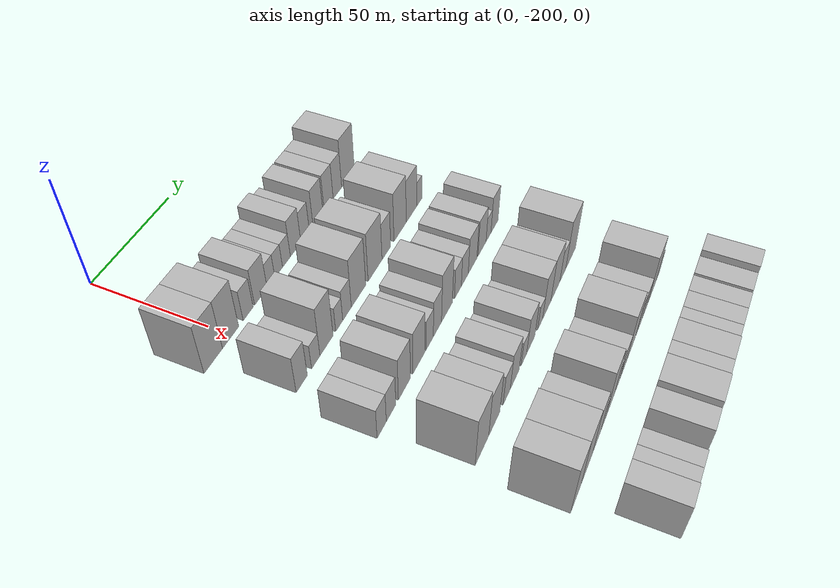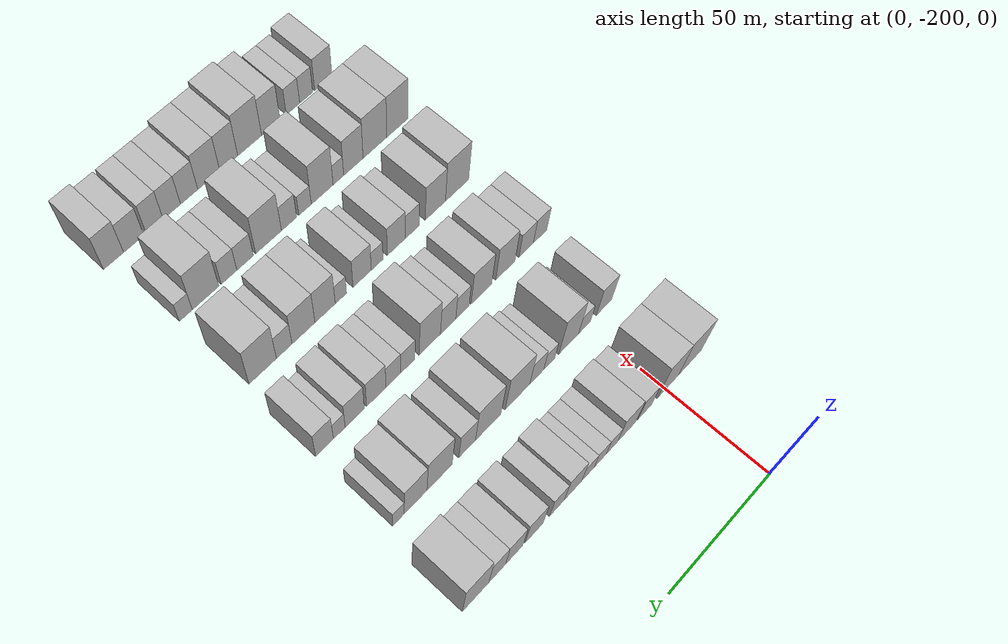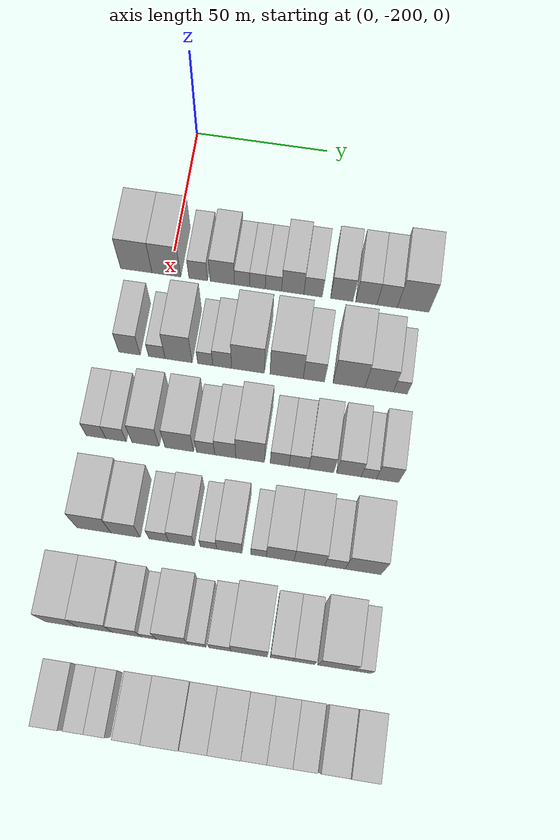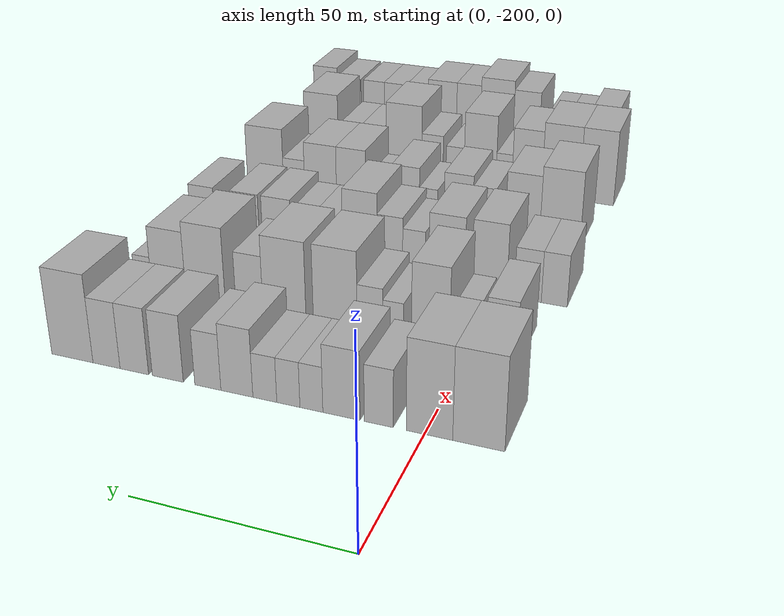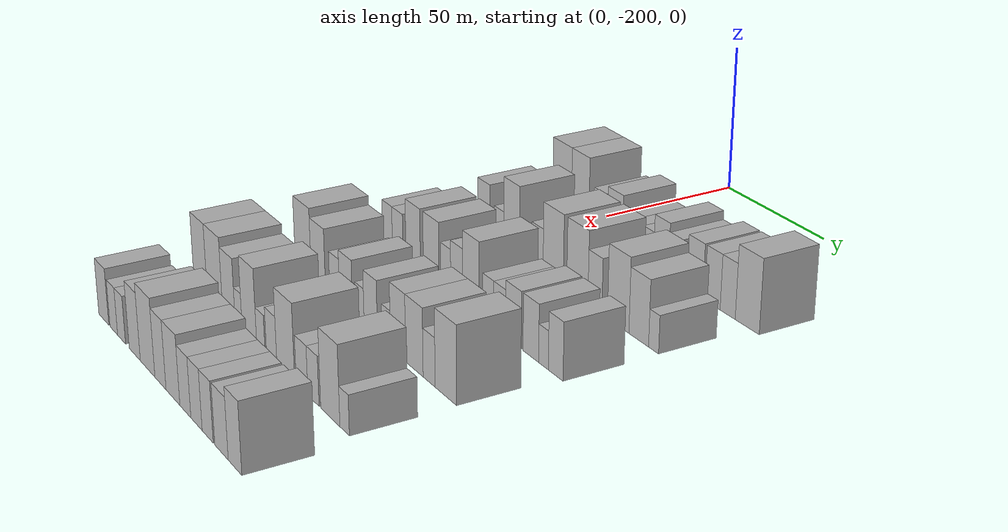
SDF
<sdf version="1.6">
 <world name="default">
  <model name="building_36">
   <static>1</static>
   <pose>50.0000 -212.1717 0 0.000000 0.000000 0.000000</pose>
   <link name="link">
    <pose>0 0 12.00 0 0 0</pose>
    <collision name="collision"><geometry><box><size>20.0000 11.6591 24.0000</size></box></geometry></collision>
    <visual name="visual">
     <cast_shadows>0</cast_shadows>
     <geometry><box><size>20.0000 11.6591 24.0000</size></box></geometry>
     <material>
      <script>
       <uri>model://HANNAS_wall/materials/scripts</uri>
       <uri>model://HANNAS_wall/materials/textures</uri>
       <name>vrc/HANNAS_wall</name>
      </script>
     </material>
    </visual>
   </link>
  </model>
  <model name="building_37">
   <static>1</static>
   <pose>50.0000 -201.0310 0 0.000000 0.000000 0.000000</pose>
   <link name="link">
    <pose>0 0 12.00 0 0 0</pose>
    <collision name="collision"><geometry><box><size>20.0000 10.6222 24.0000</size></box></geometry></collision>
    <visual name="visual">
     <cast_shadows>0</cast_shadows>
     <geometry><box><size>20.0000 10.6222 24.0000</size></box></geometry>
     <material>
      <script>
       <uri>model://HANNAS_wall/materials/scripts</uri>
       <uri>model://HANNAS_wall/materials/textures</uri>
       <name>vrc/HANNAS_wall</name>
      </script>
     </material>
    </visual>
   </link>
  </model>
  <model name="building_38">
   <static>1</static>
   <pose>50.0000 -189.3100 0 0.000000 0.000000 0.000000</pose>
   <link name="link">
    <pose>0 0 7.50 0 0 0</pose>
    <collision name="collision"><geometry><box><size>20.0000 6.8199 15.0000</size></box></geometry></collision>
    <visual name="visual">
     <cast_shadows>0</cast_shadows>
     <geometry><box><size>20.0000 6.8199 15.0000</size></box></geometry>
     <material>
      <script>
       <uri>model://HANNAS_wall/materials/scripts</uri>
       <uri>model://HANNAS_wall/materials/textures</uri>
       <name>vrc/HANNAS_wall</name>
      </script>
     </material>
    </visual>
   </link>
  </model>
  <model name="building_39">
   <static>1</static>
   <pose>50.0000 -180.4429 0 0.000000 0.000000 0.000000</pose>
   <link name="link">
    <pose>0 0 9.00 0 0 0</pose>
    <collision name="collision"><geometry><box><size>20.0000 8.9143 18.0000</size></box></geometry></collision>
    <visual name="visual">
     <cast_shadows>0</cast_shadows>
     <geometry><box><size>20.0000 8.9143 18.0000</size></box></geometry>
     <material>
      <script>
       <uri>model://HANNAS_wall/materials/scripts</uri>
       <uri>model://HANNAS_wall/materials/textures</uri>
       <name>vrc/HANNAS_wall</name>
      </script>
     </material>
    </visual>
   </link>
  </model>
  <model name="building_40">
   <static>1</static>
   <pose>50.0000 -173.1909 0 0.000000 0.000000 0.000000</pose>
   <link name="link">
    <pose>0 0 6.00 0 0 0</pose>
    <collision name="collision"><geometry><box><size>20.0000 5.5898 12.0000</size></box></geometry></collision>
    <visual name="visual">
     <cast_shadows>0</cast_shadows>
     <geometry><box><size>20.0000 5.5898 12.0000</size></box></geometry>
     <material>
      <script>
       <uri>model://HANNAS_wall/materials/scripts</uri>
       <uri>model://HANNAS_wall/materials/textures</uri>
       <name>vrc/HANNAS_wall</name>
      </script>
     </material>
    </visual>
   </link>
  </model>
  <model name="building_41">
   <static>1</static>
   <pose>50.0000 -167.5408 0 0.000000 0.000000 0.000000</pose>
   <link name="link">
    <pose>0 0 6.00 0 0 0</pose>
    <collision name="collision"><geometry><box><size>20.0000 5.7103 12.0000</size></box></geometry></collision>
    <visual name="visual">
     <cast_shadows>0</cast_shadows>
     <geometry><box><size>20.0000 5.7103 12.0000</size></box></geometry>
     <material>
      <script>
       <uri>model://HANNAS_wall/materials/scripts</uri>
       <uri>model://HANNAS_wall/materials/textures</uri>
       <name>vrc/HANNAS_wall</name>
      </script>
     </material>
    </visual>
   </link>
  </model>
  <model name="building_42">
   <static>1</static>
   <pose>50.0000 -161.7023 0 0.000000 0.000000 0.000000</pose>
   <link name="link">
    <pose>0 0 6.00 0 0 0</pose>
    <collision name="collision"><geometry><box><size>20.0000 5.9668 12.0000</size></box></geometry></collision>
    <visual name="visual">
     <cast_shadows>0</cast_shadows>
     <geometry><box><size>20.0000 5.9668 12.0000</size></box></geometry>
     <material>
      <script>
       <uri>model://HANNAS_wall/materials/scripts</uri>
       <uri>model://HANNAS_wall/materials/textures</uri>
       <name>vrc/HANNAS_wall</name>
      </script>
     </material>
    </visual>
   </link>
  </model>
  <model name="building_43">
   <static>1</static>
   <pose>50.0000 -154.6629 0 0.000000 0.000000 0.000000</pose>
   <link name="link">
    <pose>0 0 9.00 0 0 0</pose>
    <collision name="collision"><geometry><box><size>20.0000 8.1120 18.0000</size></box></geometry></collision>
    <visual name="visual">
     <cast_shadows>0</cast_shadows>
     <geometry><box><size>20.0000 8.1120 18.0000</size></box></geometry>
     <material>
      <script>
       <uri>model://HANNAS_wall/materials/scripts</uri>
       <uri>model://HANNAS_wall/materials/textures</uri>
       <name>vrc/HANNAS_wall</name>
      </script>
     </material>
    </visual>
   </link>
  </model>
  <model name="building_44">
   <static>1</static>
   <pose>50.0000 -147.2349 0 0.000000 0.000000 0.000000</pose>
   <link name="link">
    <pose>0 0 7.50 0 0 0</pose>
    <collision name="collision"><geometry><box><size>20.0000 6.7439 15.0000</size></box></geometry></collision>
    <visual name="visual">
     <cast_shadows>0</cast_shadows>
     <geometry><box><size>20.0000 6.7439 15.0000</size></box></geometry>
     <material>
      <script>
       <uri>model://HANNAS_wall/materials/scripts</uri>
       <uri>model://HANNAS_wall/materials/textures</uri>
       <name>vrc/HANNAS_wall</name>
      </script>
     </material>
    </visual>
   </link>
  </model>
  <model name="building_45">
   <static>1</static>
   <pose>50.0000 -136.7835 0 0.000000 0.000000 0.000000</pose>
   <link name="link">
    <pose>0 0 9.00 0 0 0</pose>
    <collision name="collision"><geometry><box><size>20.0000 8.1589 18.0000</size></box></geometry></collision>
    <visual name="visual">
     <cast_shadows>0</cast_shadows>
     <geometry><box><size>20.0000 8.1589 18.0000</size></box></geometry>
     <material>
      <script>
       <uri>model://HANNAS_wall/materials/scripts</uri>
       <uri>model://HANNAS_wall/materials/textures</uri>
       <name>vrc/HANNAS_wall</name>
      </script>
     </material>
    </visual>
   </link>
  </model>
  <model name="building_46">
   <static>1</static>
   <pose>50.0000 -127.8636 0 0.000000 0.000000 0.000000</pose>
   <link name="link">
    <pose>0 0 9.00 0 0 0</pose>
    <collision name="collision"><geometry><box><size>20.0000 7.6809 18.0000</size></box></geometry></collision>
    <visual name="visual">
     <cast_shadows>0</cast_shadows>
     <geometry><box><size>20.0000 7.6809 18.0000</size></box></geometry>
     <material>
      <script>
       <uri>model://HANNAS_wall/materials/scripts</uri>
       <uri>model://HANNAS_wall/materials/textures</uri>
       <name>vrc/HANNAS_wall</name>
      </script>
     </material>
    </visual>
   </link>
  </model>
  <model name="building_47">
   <static>1</static>
   <pose>50.0000 -120.3242 0 0.000000 0.000000 0.000000</pose>
   <link name="link">
    <pose>0 0 9.00 0 0 0</pose>
    <collision name="collision"><geometry><box><size>20.0000 7.3981 18.0000</size></box></geometry></collision>
    <visual name="visual">
     <cast_shadows>0</cast_shadows>
     <geometry><box><size>20.0000 7.3981 18.0000</size></box></geometry>
     <material>
      <script>
       <uri>model://HANNAS_wall/materials/scripts</uri>
       <uri>model://HANNAS_wall/materials/textures</uri>
       <name>vrc/HANNAS_wall</name>
      </script>
     </material>
    </visual>
   </link>
  </model>
  <model name="building_48">
   <static>1</static>
   <pose>50.0000 -110.8982 0 0.000000 0.000000 0.000000</pose>
   <link name="link">
    <pose>0 0 12.00 0 0 0</pose>
    <collision name="collision"><geometry><box><size>20.0000 11.4539 24.0000</size></box></geometry></collision>
    <visual name="visual">
     <cast_shadows>0</cast_shadows>
     <geometry><box><size>20.0000 11.4539 24.0000</size></box></geometry>
     <material>
      <script>
       <uri>model://HANNAS_wall/materials/scripts</uri>
       <uri>model://HANNAS_wall/materials/textures</uri>
       <name>vrc/HANNAS_wall</name>
      </script>
     </material>
    </visual>
   </link>
  </model>
  <model name="building_152">
   <static>1</static>
   <pose>82.0000 -208.5455 0 0.000000 0.000000 0.000000</pose>
   <link name="link">
    <pose>0 0 9.00 0 0 0</pose>
    <collision name="collision"><geometry><box><size>20.0000 7.7458 18.0000</size></box></geometry></collision>
    <visual name="visual">
     <cast_shadows>0</cast_shadows>
     <geometry><box><size>20.0000 7.7458 18.0000</size></box></geometry>
     <material>
      <script>
       <uri>model://HANNAS_wall/materials/scripts</uri>
       <uri>model://HANNAS_wall/materials/textures</uri>
       <name>vrc/HANNAS_wall</name>
      </script>
     </material>
    </visual>
   </link>
  </model>
  <model name="building_153">
   <static>1</static>
   <pose>82.0000 -198.6771 0 0.000000 0.000000 0.000000</pose>
   <link name="link">
    <pose>0 0 6.00 0 0 0</pose>
    <collision name="collision"><geometry><box><size>20.0000 5.9908 12.0000</size></box></geometry></collision>
    <visual name="visual">
     <cast_shadows>0</cast_shadows>
     <geometry><box><size>20.0000 5.9908 12.0000</size></box></geometry>
     <material>
      <script>
       <uri>model://HANNAS_wall/materials/scripts</uri>
       <uri>model://HANNAS_wall/materials/textures</uri>
       <name>vrc/HANNAS_wall</name>
      </script>
     </material>
    </visual>
   </link>
  </model>
  <model name="building_154">
   <static>1</static>
   <pose>82.0000 -190.8410 0 0.000000 0.000000 0.000000</pose>
   <link name="link">
    <pose>0 0 12.00 0 0 0</pose>
    <collision name="collision"><geometry><box><size>20.0000 9.6814 24.0000</size></box></geometry></collision>
    <visual name="visual">
     <cast_shadows>0</cast_shadows>
     <geometry><box><size>20.0000 9.6814 24.0000</size></box></geometry>
     <material>
      <script>
       <uri>model://HANNAS_wall/materials/scripts</uri>
       <uri>model://HANNAS_wall/materials/textures</uri>
       <name>vrc/HANNAS_wall</name>
      </script>
     </material>
    </visual>
   </link>
  </model>
  <model name="building_155">
   <static>1</static>
   <pose>82.0000 -181.3008 0 0.000000 0.000000 0.000000</pose>
   <link name="link">
    <pose>0 0 6.00 0 0 0</pose>
    <collision name="collision"><geometry><box><size>20.0000 5.3991 12.0000</size></box></geometry></collision>
    <visual name="visual">
     <cast_shadows>0</cast_shadows>
     <geometry><box><size>20.0000 5.3991 12.0000</size></box></geometry>
     <material>
      <script>
       <uri>model://HANNAS_wall/materials/scripts</uri>
       <uri>model://HANNAS_wall/materials/textures</uri>
       <name>vrc/HANNAS_wall</name>
      </script>
     </material>
    </visual>
   </link>
  </model>
  <model name="building_156">
   <static>1</static>
   <pose>82.0000 -175.2442 0 0.000000 0.000000 0.000000</pose>
   <link name="link">
    <pose>0 0 7.50 0 0 0</pose>
    <collision name="collision"><geometry><box><size>20.0000 6.7140 15.0000</size></box></geometry></collision>
    <visual name="visual">
     <cast_shadows>0</cast_shadows>
     <geometry><box><size>20.0000 6.7140 15.0000</size></box></geometry>
     <material>
      <script>
       <uri>model://HANNAS_wall/materials/scripts</uri>
       <uri>model://HANNAS_wall/materials/textures</uri>
       <name>vrc/HANNAS_wall</name>
      </script>
     </material>
    </visual>
   </link>
  </model>
  <model name="building_157">
   <static>1</static>
   <pose>82.0000 -166.0482 0 0.000000 0.000000 0.000000</pose>
   <link name="link">
    <pose>0 0 12.00 0 0 0</pose>
    <collision name="collision"><geometry><box><size>20.0000 11.6779 24.0000</size></box></geometry></collision>
    <visual name="visual">
     <cast_shadows>0</cast_shadows>
     <geometry><box><size>20.0000 11.6779 24.0000</size></box></geometry>
     <material>
      <script>
       <uri>model://HANNAS_wall/materials/scripts</uri>
       <uri>model://HANNAS_wall/materials/textures</uri>
       <name>vrc/HANNAS_wall</name>
      </script>
     </material>
    </visual>
   </link>
  </model>
  <model name="building_158">
   <static>1</static>
   <pose>82.0000 -152.3044 0 0.000000 0.000000 0.000000</pose>
   <link name="link">
    <pose>0 0 12.00 0 0 0</pose>
    <collision name="collision"><geometry><box><size>20.0000 11.8096 24.0000</size></box></geometry></collision>
    <visual name="visual">
     <cast_shadows>0</cast_shadows>
     <geometry><box><size>20.0000 11.8096 24.0000</size></box></geometry>
     <material>
      <script>
       <uri>model://HANNAS_wall/materials/scripts</uri>
       <uri>model://HANNAS_wall/materials/textures</uri>
       <name>vrc/HANNAS_wall</name>
      </script>
     </material>
    </visual>
   </link>
  </model>
  <model name="building_159">
   <static>1</static>
   <pose>82.0000 -142.6119 0 0.000000 0.000000 0.000000</pose>
   <link name="link">
    <pose>0 0 9.00 0 0 0</pose>
    <collision name="collision"><geometry><box><size>20.0000 7.5755 18.0000</size></box></geometry></collision>
    <visual name="visual">
     <cast_shadows>0</cast_shadows>
     <geometry><box><size>20.0000 7.5755 18.0000</size></box></geometry>
     <material>
      <script>
       <uri>model://HANNAS_wall/materials/scripts</uri>
       <uri>model://HANNAS_wall/materials/textures</uri>
       <name>vrc/HANNAS_wall</name>
      </script>
     </material>
    </visual>
   </link>
  </model>
  <model name="building_160">
   <static>1</static>
   <pose>82.0000 -130.1950 0 0.000000 0.000000 0.000000</pose>
   <link name="link">
    <pose>0 0 12.00 0 0 0</pose>
    <collision name="collision"><geometry><box><size>20.0000 11.2582 24.0000</size></box></geometry></collision>
    <visual name="visual">
     <cast_shadows>0</cast_shadows>
     <geometry><box><size>20.0000 11.2582 24.0000</size></box></geometry>
     <material>
      <script>
       <uri>model://HANNAS_wall/materials/scripts</uri>
       <uri>model://HANNAS_wall/materials/textures</uri>
       <name>vrc/HANNAS_wall</name>
      </script>
     </material>
    </visual>
   </link>
  </model>
  <model name="building_161">
   <static>1</static>
   <pose>82.0000 -119.5649 0 0.000000 0.000000 0.000000</pose>
   <link name="link">
    <pose>0 0 10.50 0 0 0</pose>
    <collision name="collision"><geometry><box><size>20.0000 10.0021 21.0000</size></box></geometry></collision>
    <visual name="visual">
     <cast_shadows>0</cast_shadows>
     <geometry><box><size>20.0000 10.0021 21.0000</size></box></geometry>
     <material>
      <script>
       <uri>model://HANNAS_wall/materials/scripts</uri>
       <uri>model://HANNAS_wall/materials/textures</uri>
       <name>vrc/HANNAS_wall</name>
      </script>
     </material>
    </visual>
   </link>
  </model>
  <model name="building_162">
   <static>1</static>
   <pose>82.0000 -112.0688 0 0.000000 0.000000 0.000000</pose>
   <link name="link">
    <pose>0 0 6.00 0 0 0</pose>
    <collision name="collision"><geometry><box><size>20.0000 4.9899 12.0000</size></box></geometry></collision>
    <visual name="visual">
     <cast_shadows>0</cast_shadows>
     <geometry><box><size>20.0000 4.9899 12.0000</size></box></geometry>
     <material>
      <script>
       <uri>model://HANNAS_wall/materials/scripts</uri>
       <uri>model://HANNAS_wall/materials/textures</uri>
       <name>vrc/HANNAS_wall</name>
      </script>
     </material>
    </visual>
   </link>
  </model>
  <model name="building_273">
   <static>1</static>
   <pose>114.0000 -214.1846 0 0.000000 0.000000 0.000000</pose>
   <link name="link">
    <pose>0 0 7.50 0 0 0</pose>
    <collision name="collision"><geometry><box><size>20.0000 6.8421 15.0000</size></box></geometry></collision>
    <visual name="visual">
     <cast_shadows>0</cast_shadows>
     <geometry><box><size>20.0000 6.8421 15.0000</size></box></geometry>
     <material>
      <script>
       <uri>model://HANNAS_wall/materials/scripts</uri>
       <uri>model://HANNAS_wall/materials/textures</uri>
       <name>vrc/HANNAS_wall</name>
      </script>
     </material>
    </visual>
   </link>
  </model>
  <model name="building_274">
   <static>1</static>
   <pose>114.0000 -207.1383 0 0.000000 0.000000 0.000000</pose>
   <link name="link">
    <pose>0 0 7.50 0 0 0</pose>
    <collision name="collision"><geometry><box><size>20.0000 7.2505 15.0000</size></box></geometry></collision>
    <visual name="visual">
     <cast_shadows>0</cast_shadows>
     <geometry><box><size>20.0000 7.2505 15.0000</size></box></geometry>
     <material>
      <script>
       <uri>model://HANNAS_wall/materials/scripts</uri>
       <uri>model://HANNAS_wall/materials/textures</uri>
       <name>vrc/HANNAS_wall</name>
      </script>
     </material>
    </visual>
   </link>
  </model>
  <model name="building_275">
   <static>1</static>
   <pose>114.0000 -196.7368 0 0.000000 0.000000 0.000000</pose>
   <link name="link">
    <pose>0 0 10.50 0 0 0</pose>
    <collision name="collision"><geometry><box><size>20.0000 9.5525 21.0000</size></box></geometry></collision>
    <visual name="visual">
     <cast_shadows>0</cast_shadows>
     <geometry><box><size>20.0000 9.5525 21.0000</size></box></geometry>
     <material>
      <script>
       <uri>model://HANNAS_wall/materials/scripts</uri>
       <uri>model://HANNAS_wall/materials/textures</uri>
       <name>vrc/HANNAS_wall</name>
      </script>
     </material>
    </visual>
   </link>
  </model>
  <model name="building_276">
   <static>1</static>
   <pose>114.0000 -184.9653 0 0.000000 0.000000 0.000000</pose>
   <link name="link">
    <pose>0 0 10.50 0 0 0</pose>
    <collision name="collision"><geometry><box><size>20.0000 9.9906 21.0000</size></box></geometry></collision>
    <visual name="visual">
     <cast_shadows>0</cast_shadows>
     <geometry><box><size>20.0000 9.9906 21.0000</size></box></geometry>
     <material>
      <script>
       <uri>model://HANNAS_wall/materials/scripts</uri>
       <uri>model://HANNAS_wall/materials/textures</uri>
       <name>vrc/HANNAS_wall</name>
      </script>
     </material>
    </visual>
   </link>
  </model>
  <model name="building_277">
   <static>1</static>
   <pose>114.0000 -175.7838 0 0.000000 0.000000 0.000000</pose>
   <link name="link">
    <pose>0 0 7.50 0 0 0</pose>
    <collision name="collision"><geometry><box><size>20.0000 6.3725 15.0000</size></box></geometry></collision>
    <visual name="visual">
     <cast_shadows>0</cast_shadows>
     <geometry><box><size>20.0000 6.3725 15.0000</size></box></geometry>
     <material>
      <script>
       <uri>model://HANNAS_wall/materials/scripts</uri>
       <uri>model://HANNAS_wall/materials/textures</uri>
       <name>vrc/HANNAS_wall</name>
      </script>
     </material>
    </visual>
   </link>
  </model>
  <model name="building_278">
   <static>1</static>
   <pose>114.0000 -168.9420 0 0.000000 0.000000 0.000000</pose>
   <link name="link">
    <pose>0 0 9.00 0 0 0</pose>
    <collision name="collision"><geometry><box><size>20.0000 7.3110 18.0000</size></box></geometry></collision>
    <visual name="visual">
     <cast_shadows>0</cast_shadows>
     <geometry><box><size>20.0000 7.3110 18.0000</size></box></geometry>
     <material>
      <script>
       <uri>model://HANNAS_wall/materials/scripts</uri>
       <uri>model://HANNAS_wall/materials/textures</uri>
       <name>vrc/HANNAS_wall</name>
      </script>
     </material>
    </visual>
   </link>
  </model>
  <model name="building_279">
   <static>1</static>
   <pose>114.0000 -160.3141 0 0.000000 0.000000 0.000000</pose>
   <link name="link">
    <pose>0 0 12.00 0 0 0</pose>
    <collision name="collision"><geometry><box><size>20.0000 9.9449 24.0000</size></box></geometry></collision>
    <visual name="visual">
     <cast_shadows>0</cast_shadows>
     <geometry><box><size>20.0000 9.9449 24.0000</size></box></geometry>
     <material>
      <script>
       <uri>model://HANNAS_wall/materials/scripts</uri>
       <uri>model://HANNAS_wall/materials/textures</uri>
       <name>vrc/HANNAS_wall</name>
      </script>
     </material>
    </visual>
   </link>
  </model>
  <model name="building_280">
   <static>1</static>
   <pose>114.0000 -150.0984 0 0.000000 0.000000 0.000000</pose>
   <link name="link">
    <pose>0 0 7.50 0 0 0</pose>
    <collision name="collision"><geometry><box><size>20.0000 6.4865 15.0000</size></box></geometry></collision>
    <visual name="visual">
     <cast_shadows>0</cast_shadows>
     <geometry><box><size>20.0000 6.4865 15.0000</size></box></geometry>
     <material>
      <script>
       <uri>model://HANNAS_wall/materials/scripts</uri>
       <uri>model://HANNAS_wall/materials/textures</uri>
       <name>vrc/HANNAS_wall</name>
      </script>
     </material>
    </visual>
   </link>
  </model>
  <model name="building_281">
   <static>1</static>
   <pose>114.0000 -143.4741 0 0.000000 0.000000 0.000000</pose>
   <link name="link">
    <pose>0 0 7.50 0 0 0</pose>
    <collision name="collision"><geometry><box><size>20.0000 6.7622 15.0000</size></box></geometry></collision>
    <visual name="visual">
     <cast_shadows>0</cast_shadows>
     <geometry><box><size>20.0000 6.7622 15.0000</size></box></geometry>
     <material>
      <script>
       <uri>model://HANNAS_wall/materials/scripts</uri>
       <uri>model://HANNAS_wall/materials/textures</uri>
       <name>vrc/HANNAS_wall</name>
      </script>
     </material>
    </visual>
   </link>
  </model>
  <model name="building_282">
   <static>1</static>
   <pose>114.0000 -135.7568 0 0.000000 0.000000 0.000000</pose>
   <link name="link">
    <pose>0 0 9.00 0 0 0</pose>
    <collision name="collision"><geometry><box><size>20.0000 8.6722 18.0000</size></box></geometry></collision>
    <visual name="visual">
     <cast_shadows>0</cast_shadows>
     <geometry><box><size>20.0000 8.6722 18.0000</size></box></geometry>
     <material>
      <script>
       <uri>model://HANNAS_wall/materials/scripts</uri>
       <uri>model://HANNAS_wall/materials/textures</uri>
       <name>vrc/HANNAS_wall</name>
      </script>
     </material>
    </visual>
   </link>
  </model>
  <model name="building_283">
   <static>1</static>
   <pose>114.0000 -126.1874 0 0.000000 0.000000 0.000000</pose>
   <link name="link">
    <pose>0 0 9.00 0 0 0</pose>
    <collision name="collision"><geometry><box><size>20.0000 8.4667 18.0000</size></box></geometry></collision>
    <visual name="visual">
     <cast_shadows>0</cast_shadows>
     <geometry><box><size>20.0000 8.4667 18.0000</size></box></geometry>
     <material>
      <script>
       <uri>model://HANNAS_wall/materials/scripts</uri>
       <uri>model://HANNAS_wall/materials/textures</uri>
       <name>vrc/HANNAS_wall</name>
      </script>
     </material>
    </visual>
   </link>
  </model>
  <model name="building_284">
   <static>1</static>
   <pose>114.0000 -119.3740 0 0.000000 0.000000 0.000000</pose>
   <link name="link">
    <pose>0 0 6.00 0 0 0</pose>
    <collision name="collision"><geometry><box><size>20.0000 5.1599 12.0000</size></box></geometry></collision>
    <visual name="visual">
     <cast_shadows>0</cast_shadows>
     <geometry><box><size>20.0000 5.1599 12.0000</size></box></geometry>
     <material>
      <script>
       <uri>model://HANNAS_wall/materials/scripts</uri>
       <uri>model://HANNAS_wall/materials/textures</uri>
       <name>vrc/HANNAS_wall</name>
      </script>
     </material>
    </visual>
   </link>
  </model>
  <model name="building_285">
   <static>1</static>
   <pose>114.0000 -112.9427 0 0.000000 0.000000 0.000000</pose>
   <link name="link">
    <pose>0 0 9.00 0 0 0</pose>
    <collision name="collision"><geometry><box><size>20.0000 7.7028 18.0000</size></box></geometry></collision>
    <visual name="visual">
     <cast_shadows>0</cast_shadows>
     <geometry><box><size>20.0000 7.7028 18.0000</size></box></geometry>
     <material>
      <script>
       <uri>model://HANNAS_wall/materials/scripts</uri>
       <uri>model://HANNAS_wall/materials/textures</uri>
       <name>vrc/HANNAS_wall</name>
      </script>
     </material>
    </visual>
   </link>
  </model>
  <model name="building_393">
   <static>1</static>
   <pose>146.0000 -208.4044 0 0.000000 0.000000 0.000000</pose>
   <link name="link">
    <pose>0 0 12.00 0 0 0</pose>
    <collision name="collision"><geometry><box><size>20.0000 11.6292 24.0000</size></box></geometry></collision>
    <visual name="visual">
     <cast_shadows>0</cast_shadows>
     <geometry><box><size>20.0000 11.6292 24.0000</size></box></geometry>
     <material>
      <script>
       <uri>model://HANNAS_wall/materials/scripts</uri>
       <uri>model://HANNAS_wall/materials/textures</uri>
       <name>vrc/HANNAS_wall</name>
      </script>
     </material>
    </visual>
   </link>
  </model>
  <model name="building_394">
   <static>1</static>
   <pose>146.0000 -197.5682 0 0.000000 0.000000 0.000000</pose>
   <link name="link">
    <pose>0 0 10.50 0 0 0</pose>
    <collision name="collision"><geometry><box><size>20.0000 10.0433 21.0000</size></box></geometry></collision>
    <visual name="visual">
     <cast_shadows>0</cast_shadows>
     <geometry><box><size>20.0000 10.0433 21.0000</size></box></geometry>
     <material>
      <script>
       <uri>model://HANNAS_wall/materials/scripts</uri>
       <uri>model://HANNAS_wall/materials/textures</uri>
       <name>vrc/HANNAS_wall</name>
      </script>
     </material>
    </visual>
   </link>
  </model>
  <model name="building_395">
   <static>1</static>
   <pose>146.0000 -186.1837 0 0.000000 0.000000 0.000000</pose>
   <link name="link">
    <pose>0 0 7.50 0 0 0</pose>
    <collision name="collision"><geometry><box><size>20.0000 6.7257 15.0000</size></box></geometry></collision>
    <visual name="visual">
     <cast_shadows>0</cast_shadows>
     <geometry><box><size>20.0000 6.7257 15.0000</size></box></geometry>
     <material>
      <script>
       <uri>model://HANNAS_wall/materials/scripts</uri>
       <uri>model://HANNAS_wall/materials/textures</uri>
       <name>vrc/HANNAS_wall</name>
      </script>
     </material>
    </visual>
   </link>
  </model>
  <model name="building_396">
   <static>1</static>
   <pose>146.0000 -178.4914 0 0.000000 0.000000 0.000000</pose>
   <link name="link">
    <pose>0 0 9.00 0 0 0</pose>
    <collision name="collision"><geometry><box><size>20.0000 8.6589 18.0000</size></box></geometry></collision>
    <visual name="visual">
     <cast_shadows>0</cast_shadows>
     <geometry><box><size>20.0000 8.6589 18.0000</size></box></geometry>
     <material>
      <script>
       <uri>model://HANNAS_wall/materials/scripts</uri>
       <uri>model://HANNAS_wall/materials/textures</uri>
       <name>vrc/HANNAS_wall</name>
      </script>
     </material>
    </visual>
   </link>
  </model>
  <model name="building_397">
   <static>1</static>
   <pose>146.0000 -169.3822 0 0.000000 0.000000 0.000000</pose>
   <link name="link">
    <pose>0 0 6.00 0 0 0</pose>
    <collision name="collision"><geometry><box><size>20.0000 5.5595 12.0000</size></box></geometry></collision>
    <visual name="visual">
     <cast_shadows>0</cast_shadows>
     <geometry><box><size>20.0000 5.5595 12.0000</size></box></geometry>
     <material>
      <script>
       <uri>model://HANNAS_wall/materials/scripts</uri>
       <uri>model://HANNAS_wall/materials/textures</uri>
       <name>vrc/HANNAS_wall</name>
      </script>
     </material>
    </visual>
   </link>
  </model>
  <model name="building_398">
   <static>1</static>
   <pose>146.0000 -162.3393 0 0.000000 0.000000 0.000000</pose>
   <link name="link">
    <pose>0 0 9.00 0 0 0</pose>
    <collision name="collision"><geometry><box><size>20.0000 8.5264 18.0000</size></box></geometry></collision>
    <visual name="visual">
     <cast_shadows>0</cast_shadows>
     <geometry><box><size>20.0000 8.5264 18.0000</size></box></geometry>
     <material>
      <script>
       <uri>model://HANNAS_wall/materials/scripts</uri>
       <uri>model://HANNAS_wall/materials/textures</uri>
       <name>vrc/HANNAS_wall</name>
      </script>
     </material>
    </visual>
   </link>
  </model>
  <model name="building_399">
   <static>1</static>
   <pose>146.0000 -152.4813 0 0.000000 0.000000 0.000000</pose>
   <link name="link">
    <pose>0 0 6.00 0 0 0</pose>
    <collision name="collision"><geometry><box><size>20.0000 5.1897 12.0000</size></box></geometry></collision>
    <visual name="visual">
     <cast_shadows>0</cast_shadows>
     <geometry><box><size>20.0000 5.1897 12.0000</size></box></geometry>
     <material>
      <script>
       <uri>model://HANNAS_wall/materials/scripts</uri>
       <uri>model://HANNAS_wall/materials/textures</uri>
       <name>vrc/HANNAS_wall</name>
      </script>
     </material>
    </visual>
   </link>
  </model>
  <model name="building_400">
   <static>1</static>
   <pose>146.0000 -145.2639 0 0.000000 0.000000 0.000000</pose>
   <link name="link">
    <pose>0 0 10.50 0 0 0</pose>
    <collision name="collision"><geometry><box><size>20.0000 9.2451 21.0000</size></box></geometry></collision>
    <visual name="visual">
     <cast_shadows>0</cast_shadows>
     <geometry><box><size>20.0000 9.2451 21.0000</size></box></geometry>
     <material>
      <script>
       <uri>model://HANNAS_wall/materials/scripts</uri>
       <uri>model://HANNAS_wall/materials/textures</uri>
       <name>vrc/HANNAS_wall</name>
      </script>
     </material>
    </visual>
   </link>
  </model>
  <model name="building_401">
   <static>1</static>
   <pose>146.0000 -135.5036 0 0.000000 0.000000 0.000000</pose>
   <link name="link">
    <pose>0 0 10.50 0 0 0</pose>
    <collision name="collision"><geometry><box><size>20.0000 10.2756 21.0000</size></box></geometry></collision>
    <visual name="visual">
     <cast_shadows>0</cast_shadows>
     <geometry><box><size>20.0000 10.2756 21.0000</size></box></geometry>
     <material>
      <script>
       <uri>model://HANNAS_wall/materials/scripts</uri>
       <uri>model://HANNAS_wall/materials/textures</uri>
       <name>vrc/HANNAS_wall</name>
      </script>
     </material>
    </visual>
   </link>
  </model>
  <model name="building_402">
   <static>1</static>
   <pose>146.0000 -126.9054 0 0.000000 0.000000 0.000000</pose>
   <link name="link">
    <pose>0 0 7.50 0 0 0</pose>
    <collision name="collision"><geometry><box><size>20.0000 6.9208 15.0000</size></box></geometry></collision>
    <visual name="visual">
     <cast_shadows>0</cast_shadows>
     <geometry><box><size>20.0000 6.9208 15.0000</size></box></geometry>
     <material>
      <script>
       <uri>model://HANNAS_wall/materials/scripts</uri>
       <uri>model://HANNAS_wall/materials/textures</uri>
       <name>vrc/HANNAS_wall</name>
      </script>
     </material>
    </visual>
   </link>
  </model>
  <model name="building_403">
   <static>1</static>
   <pose>146.0000 -117.4483 0 0.000000 0.000000 0.000000</pose>
   <link name="link">
    <pose>0 0 12.00 0 0 0</pose>
    <collision name="collision"><geometry><box><size>20.0000 11.9935 24.0000</size></box></geometry></collision>
    <visual name="visual">
     <cast_shadows>0</cast_shadows>
     <geometry><box><size>20.0000 11.9935 24.0000</size></box></geometry>
     <material>
      <script>
       <uri>model://HANNAS_wall/materials/scripts</uri>
       <uri>model://HANNAS_wall/materials/textures</uri>
       <name>vrc/HANNAS_wall</name>
      </script>
     </material>
    </visual>
   </link>
  </model>
  <model name="building_512">
   <static>1</static>
   <pose>178.0000 -212.6708 0 0.000000 0.000000 0.000000</pose>
   <link name="link">
    <pose>0 0 12.00 0 0 0</pose>
    <collision name="collision"><geometry><box><size>20.0000 10.5323 24.0000</size></box></geometry></collision>
    <visual name="visual">
     <cast_shadows>0</cast_shadows>
     <geometry><box><size>20.0000 10.5323 24.0000</size></box></geometry>
     <material>
      <script>
       <uri>model://HANNAS_wall/materials/scripts</uri>
       <uri>model://HANNAS_wall/materials/textures</uri>
       <name>vrc/HANNAS_wall</name>
      </script>
     </material>
    </visual>
   </link>
  </model>
  <model name="building_513">
   <static>1</static>
   <pose>178.0000 -201.5194 0 0.000000 0.000000 0.000000</pose>
   <link name="link">
    <pose>0 0 12.00 0 0 0</pose>
    <collision name="collision"><geometry><box><size>20.0000 11.7704 24.0000</size></box></geometry></collision>
    <visual name="visual">
     <cast_shadows>0</cast_shadows>
     <geometry><box><size>20.0000 11.7704 24.0000</size></box></geometry>
     <material>
      <script>
       <uri>model://HANNAS_wall/materials/scripts</uri>
       <uri>model://HANNAS_wall/materials/textures</uri>
       <name>vrc/HANNAS_wall</name>
      </script>
     </material>
    </visual>
   </link>
  </model>
  <model name="building_514">
   <static>1</static>
   <pose>178.0000 -190.9170 0 0.000000 0.000000 0.000000</pose>
   <link name="link">
    <pose>0 0 10.50 0 0 0</pose>
    <collision name="collision"><geometry><box><size>20.0000 9.4344 21.0000</size></box></geometry></collision>
    <visual name="visual">
     <cast_shadows>0</cast_shadows>
     <geometry><box><size>20.0000 9.4344 21.0000</size></box></geometry>
     <material>
      <script>
       <uri>model://HANNAS_wall/materials/scripts</uri>
       <uri>model://HANNAS_wall/materials/textures</uri>
       <name>vrc/HANNAS_wall</name>
      </script>
     </material>
    </visual>
   </link>
  </model>
  <model name="building_515">
   <static>1</static>
   <pose>178.0000 -183.6403 0 0.000000 0.000000 0.000000</pose>
   <link name="link">
    <pose>0 0 6.00 0 0 0</pose>
    <collision name="collision"><geometry><box><size>20.0000 5.1190 12.0000</size></box></geometry></collision>
    <visual name="visual">
     <cast_shadows>0</cast_shadows>
     <geometry><box><size>20.0000 5.1190 12.0000</size></box></geometry>
     <material>
      <script>
       <uri>model://HANNAS_wall/materials/scripts</uri>
       <uri>model://HANNAS_wall/materials/textures</uri>
       <name>vrc/HANNAS_wall</name>
      </script>
     </material>
    </visual>
   </link>
  </model>
  <model name="building_516">
   <static>1</static>
   <pose>178.0000 -175.8809 0 0.000000 0.000000 0.000000</pose>
   <link name="link">
    <pose>0 0 12.00 0 0 0</pose>
    <collision name="collision"><geometry><box><size>20.0000 10.3998 24.0000</size></box></geometry></collision>
    <visual name="visual">
     <cast_shadows>0</cast_shadows>
     <geometry><box><size>20.0000 10.3998 24.0000</size></box></geometry>
     <material>
      <script>
       <uri>model://HANNAS_wall/materials/scripts</uri>
       <uri>model://HANNAS_wall/materials/textures</uri>
       <name>vrc/HANNAS_wall</name>
      </script>
     </material>
    </visual>
   </link>
  </model>
  <model name="building_517">
   <static>1</static>
   <pose>178.0000 -167.7464 0 0.000000 0.000000 0.000000</pose>
   <link name="link">
    <pose>0 0 6.00 0 0 0</pose>
    <collision name="collision"><geometry><box><size>20.0000 5.8691 12.0000</size></box></geometry></collision>
    <visual name="visual">
     <cast_shadows>0</cast_shadows>
     <geometry><box><size>20.0000 5.8691 12.0000</size></box></geometry>
     <material>
      <script>
       <uri>model://HANNAS_wall/materials/scripts</uri>
       <uri>model://HANNAS_wall/materials/textures</uri>
       <name>vrc/HANNAS_wall</name>
      </script>
     </material>
    </visual>
   </link>
  </model>
  <model name="building_518">
   <static>1</static>
   <pose>178.0000 -160.2640 0 0.000000 0.000000 0.000000</pose>
   <link name="link">
    <pose>0 0 7.50 0 0 0</pose>
    <collision name="collision"><geometry><box><size>20.0000 7.0958 15.0000</size></box></geometry></collision>
    <visual name="visual">
     <cast_shadows>0</cast_shadows>
     <geometry><box><size>20.0000 7.0958 15.0000</size></box></geometry>
     <material>
      <script>
       <uri>model://HANNAS_wall/materials/scripts</uri>
       <uri>model://HANNAS_wall/materials/textures</uri>
       <name>vrc/HANNAS_wall</name>
      </script>
     </material>
    </visual>
   </link>
  </model>
  <model name="building_519">
   <static>1</static>
   <pose>178.0000 -150.7669 0 0.000000 0.000000 0.000000</pose>
   <link name="link">
    <pose>0 0 12.00 0 0 0</pose>
    <collision name="collision"><geometry><box><size>20.0000 11.8983 24.0000</size></box></geometry></collision>
    <visual name="visual">
     <cast_shadows>0</cast_shadows>
     <geometry><box><size>20.0000 11.8983 24.0000</size></box></geometry>
     <material>
      <script>
       <uri>model://HANNAS_wall/materials/scripts</uri>
       <uri>model://HANNAS_wall/materials/textures</uri>
       <name>vrc/HANNAS_wall</name>
      </script>
     </material>
    </visual>
   </link>
  </model>
  <model name="building_520">
   <static>1</static>
   <pose>178.0000 -140.0873 0 0.000000 0.000000 0.000000</pose>
   <link name="link">
    <pose>0 0 7.50 0 0 0</pose>
    <collision name="collision"><geometry><box><size>20.0000 7.4607 15.0000</size></box></geometry></collision>
    <visual name="visual">
     <cast_shadows>0</cast_shadows>
     <geometry><box><size>20.0000 7.4607 15.0000</size></box></geometry>
     <material>
      <script>
       <uri>model://HANNAS_wall/materials/scripts</uri>
       <uri>model://HANNAS_wall/materials/textures</uri>
       <name>vrc/HANNAS_wall</name>
      </script>
     </material>
    </visual>
   </link>
  </model>
  <model name="building_521">
   <static>1</static>
   <pose>178.0000 -132.8384 0 0.000000 0.000000 0.000000</pose>
   <link name="link">
    <pose>0 0 7.50 0 0 0</pose>
    <collision name="collision"><geometry><box><size>20.0000 7.0371 15.0000</size></box></geometry></collision>
    <visual name="visual">
     <cast_shadows>0</cast_shadows>
     <geometry><box><size>20.0000 7.0371 15.0000</size></box></geometry>
     <material>
      <script>
       <uri>model://HANNAS_wall/materials/scripts</uri>
       <uri>model://HANNAS_wall/materials/textures</uri>
       <name>vrc/HANNAS_wall</name>
      </script>
     </material>
    </visual>
   </link>
  </model>
  <model name="building_522">
   <static>1</static>
   <pose>178.0000 -122.4799 0 0.000000 0.000000 0.000000</pose>
   <link name="link">
    <pose>0 0 12.00 0 0 0</pose>
    <collision name="collision"><geometry><box><size>20.0000 11.6801 24.0000</size></box></geometry></collision>
    <visual name="visual">
     <cast_shadows>0</cast_shadows>
     <geometry><box><size>20.0000 11.6801 24.0000</size></box></geometry>
     <material>
      <script>
       <uri>model://HANNAS_wall/materials/scripts</uri>
       <uri>model://HANNAS_wall/materials/textures</uri>
       <name>vrc/HANNAS_wall</name>
      </script>
     </material>
    </visual>
   </link>
  </model>
  <model name="building_523">
   <static>1</static>
   <pose>178.0000 -113.8206 0 0.000000 0.000000 0.000000</pose>
   <link name="link">
    <pose>0 0 6.00 0 0 0</pose>
    <collision name="collision"><geometry><box><size>20.0000 5.6383 12.0000</size></box></geometry></collision>
    <visual name="visual">
     <cast_shadows>0</cast_shadows>
     <geometry><box><size>20.0000 5.6383 12.0000</size></box></geometry>
     <material>
      <script>
       <uri>model://HANNAS_wall/materials/scripts</uri>
       <uri>model://HANNAS_wall/materials/textures</uri>
       <name>vrc/HANNAS_wall</name>
      </script>
     </material>
    </visual>
   </link>
  </model>
  <model name="building_639">
   <static>1</static>
   <pose>210.0000 -208.3990 0 0.000000 0.000000 0.000000</pose>
   <link name="link">
    <pose>0 0 9.00 0 0 0</pose>
    <collision name="collision"><geometry><box><size>20.0000 8.6559 18.0000</size></box></geometry></collision>
    <visual name="visual">
     <cast_shadows>0</cast_shadows>
     <geometry><box><size>20.0000 8.6559 18.0000</size></box></geometry>
     <material>
      <script>
       <uri>model://HANNAS_wall/materials/scripts</uri>
       <uri>model://HANNAS_wall/materials/textures</uri>
       <name>vrc/HANNAS_wall</name>
      </script>
     </material>
    </visual>
   </link>
  </model>
  <model name="building_640">
   <static>1</static>
   <pose>210.0000 -199.8685 0 0.000000 0.000000 0.000000</pose>
   <link name="link">
    <pose>0 0 7.50 0 0 0</pose>
    <collision name="collision"><geometry><box><size>20.0000 6.4052 15.0000</size></box></geometry></collision>
    <visual name="visual">
     <cast_shadows>0</cast_shadows>
     <geometry><box><size>20.0000 6.4052 15.0000</size></box></geometry>
     <material>
      <script>
       <uri>model://HANNAS_wall/materials/scripts</uri>
       <uri>model://HANNAS_wall/materials/textures</uri>
       <name>vrc/HANNAS_wall</name>
      </script>
     </material>
    </visual>
   </link>
  </model>
  <model name="building_641">
   <static>1</static>
   <pose>210.0000 -193.3769 0 0.000000 0.000000 0.000000</pose>
   <link name="link">
    <pose>0 0 7.50 0 0 0</pose>
    <collision name="collision"><geometry><box><size>20.0000 6.5779 15.0000</size></box></geometry></collision>
    <visual name="visual">
     <cast_shadows>0</cast_shadows>
     <geometry><box><size>20.0000 6.5779 15.0000</size></box></geometry>
     <material>
      <script>
       <uri>model://HANNAS_wall/materials/scripts</uri>
       <uri>model://HANNAS_wall/materials/textures</uri>
       <name>vrc/HANNAS_wall</name>
      </script>
     </material>
    </visual>
   </link>
  </model>
  <model name="building_642">
   <static>1</static>
   <pose>210.0000 -182.6408 0 0.000000 0.000000 0.000000</pose>
   <link name="link">
    <pose>0 0 10.50 0 0 0</pose>
    <collision name="collision"><geometry><box><size>20.0000 8.8943 21.0000</size></box></geometry></collision>
    <visual name="visual">
     <cast_shadows>0</cast_shadows>
     <geometry><box><size>20.0000 8.8943 21.0000</size></box></geometry>
     <material>
      <script>
       <uri>model://HANNAS_wall/materials/scripts</uri>
       <uri>model://HANNAS_wall/materials/textures</uri>
       <name>vrc/HANNAS_wall</name>
      </script>
     </material>
    </visual>
   </link>
  </model>
  <model name="building_643">
   <static>1</static>
   <pose>210.0000 -172.5231 0 0.000000 0.000000 0.000000</pose>
   <link name="link">
    <pose>0 0 12.00 0 0 0</pose>
    <collision name="collision"><geometry><box><size>20.0000 11.3411 24.0000</size></box></geometry></collision>
    <visual name="visual">
     <cast_shadows>0</cast_shadows>
     <geometry><box><size>20.0000 11.3411 24.0000</size></box></geometry>
     <material>
      <script>
       <uri>model://HANNAS_wall/materials/scripts</uri>
       <uri>model://HANNAS_wall/materials/textures</uri>
       <name>vrc/HANNAS_wall</name>
      </script>
     </material>
    </visual>
   </link>
  </model>
  <model name="building_644">
   <static>1</static>
   <pose>210.0000 -162.6461 0 0.000000 0.000000 0.000000</pose>
   <link name="link">
    <pose>0 0 10.50 0 0 0</pose>
    <collision name="collision"><geometry><box><size>20.0000 8.4129 21.0000</size></box></geometry></collision>
    <visual name="visual">
     <cast_shadows>0</cast_shadows>
     <geometry><box><size>20.0000 8.4129 21.0000</size></box></geometry>
     <material>
      <script>
       <uri>model://HANNAS_wall/materials/scripts</uri>
       <uri>model://HANNAS_wall/materials/textures</uri>
       <name>vrc/HANNAS_wall</name>
      </script>
     </material>
    </visual>
   </link>
  </model>
  <model name="building_645">
   <static>1</static>
   <pose>210.0000 -153.3664 0 0.000000 0.000000 0.000000</pose>
   <link name="link">
    <pose>0 0 10.50 0 0 0</pose>
    <collision name="collision"><geometry><box><size>20.0000 10.1467 21.0000</size></box></geometry></collision>
    <visual name="visual">
     <cast_shadows>0</cast_shadows>
     <geometry><box><size>20.0000 10.1467 21.0000</size></box></geometry>
     <material>
      <script>
       <uri>model://HANNAS_wall/materials/scripts</uri>
       <uri>model://HANNAS_wall/materials/textures</uri>
       <name>vrc/HANNAS_wall</name>
      </script>
     </material>
    </visual>
   </link>
  </model>
  <model name="building_646">
   <static>1</static>
   <pose>210.0000 -144.3670 0 0.000000 0.000000 0.000000</pose>
   <link name="link">
    <pose>0 0 9.00 0 0 0</pose>
    <collision name="collision"><geometry><box><size>20.0000 7.8519 18.0000</size></box></geometry></collision>
    <visual name="visual">
     <cast_shadows>0</cast_shadows>
     <geometry><box><size>20.0000 7.8519 18.0000</size></box></geometry>
     <material>
      <script>
       <uri>model://HANNAS_wall/materials/scripts</uri>
       <uri>model://HANNAS_wall/materials/textures</uri>
       <name>vrc/HANNAS_wall</name>
      </script>
     </material>
    </visual>
   </link>
  </model>
  <model name="building_647">
   <static>1</static>
   <pose>210.0000 -136.5161 0 0.000000 0.000000 0.000000</pose>
   <link name="link">
    <pose>0 0 9.00 0 0 0</pose>
    <collision name="collision"><geometry><box><size>20.0000 7.8500 18.0000</size></box></geometry></collision>
    <visual name="visual">
     <cast_shadows>0</cast_shadows>
     <geometry><box><size>20.0000 7.8500 18.0000</size></box></geometry>
     <material>
      <script>
       <uri>model://HANNAS_wall/materials/scripts</uri>
       <uri>model://HANNAS_wall/materials/textures</uri>
       <name>vrc/HANNAS_wall</name>
      </script>
     </material>
    </visual>
   </link>
  </model>
  <model name="building_648">
   <static>1</static>
   <pose>210.0000 -128.8188 0 0.000000 0.000000 0.000000</pose>
   <link name="link">
    <pose>0 0 9.00 0 0 0</pose>
    <collision name="collision"><geometry><box><size>20.0000 7.5446 18.0000</size></box></geometry></collision>
    <visual name="visual">
     <cast_shadows>0</cast_shadows>
     <geometry><box><size>20.0000 7.5446 18.0000</size></box></geometry>
     <material>
      <script>
       <uri>model://HANNAS_wall/materials/scripts</uri>
       <uri>model://HANNAS_wall/materials/textures</uri>
       <name>vrc/HANNAS_wall</name>
      </script>
     </material>
    </visual>
   </link>
  </model>
  <model name="building_649">
   <static>1</static>
   <pose>210.0000 -119.6216 0 0.000000 0.000000 0.000000</pose>
   <link name="link">
    <pose>0 0 9.00 0 0 0</pose>
    <collision name="collision"><geometry><box><size>20.0000 8.8498 18.0000</size></box></geometry></collision>
    <visual name="visual">
     <cast_shadows>0</cast_shadows>
     <geometry><box><size>20.0000 8.8498 18.0000</size></box></geometry>
     <material>
      <script>
       <uri>model://HANNAS_wall/materials/scripts</uri>
       <uri>model://HANNAS_wall/materials/textures</uri>
       <name>vrc/HANNAS_wall</name>
      </script>
     </material>
    </visual>
   </link>
  </model>
  <model name="building_650">
   <static>1</static>
   <pose>210.0000 -110.8455 0 0.000000 0.000000 0.000000</pose>
   <link name="link">
    <pose>0 0 10.50 0 0 0</pose>
    <collision name="collision"><geometry><box><size>20.0000 8.7023 21.0000</size></box></geometry></collision>
    <visual name="visual">
     <cast_shadows>0</cast_shadows>
     <geometry><box><size>20.0000 8.7023 21.0000</size></box></geometry>
     <material>
      <script>
       <uri>model://HANNAS_wall/materials/scripts</uri>
       <uri>model://HANNAS_wall/materials/textures</uri>
       <name>vrc/HANNAS_wall</name>
      </script>
     </material>
    </visual>
   </link>
  </model>
 </world>
</sdf>
